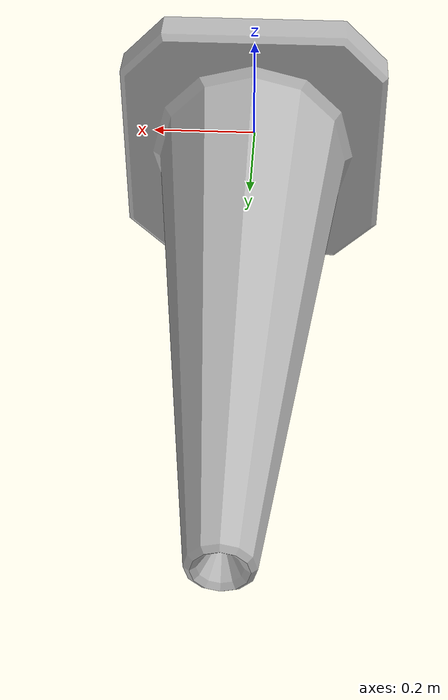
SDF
<?xml version="1.0" ?>
<sdf version="1.5">
  <model name="Construction Cone">
    <link name="link">
      <collision name="collision">
        <geometry>
          <mesh>
            <scale>10 10 10</scale>
            <uri>file:///workspaces/6.4210-final-project/sdfs/construction_cone.obj</uri>
          </mesh>
        </geometry>
      </collision>
      <visual name="visual">
        <geometry>
          <mesh>
            <scale>10 10 10</scale>
            <uri>file:///workspaces/6.4210-final-project/sdfs/construction_cone.obj</uri>
          </mesh>
        </geometry>
      </visual>
    </link>
  </model>
</sdf>
